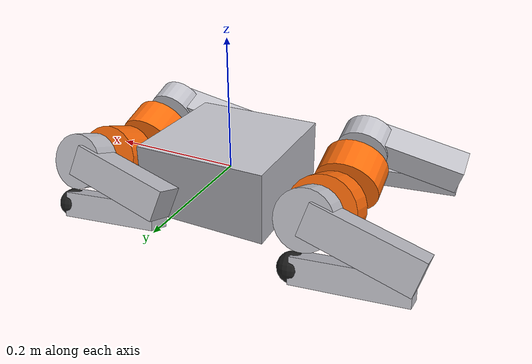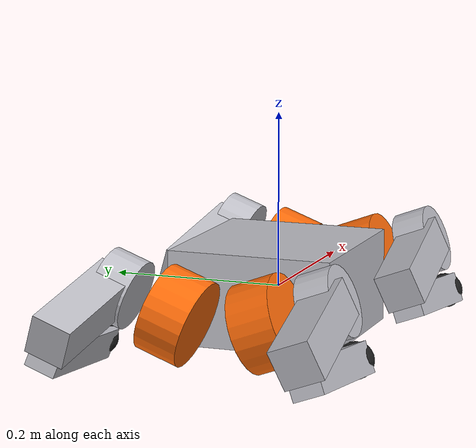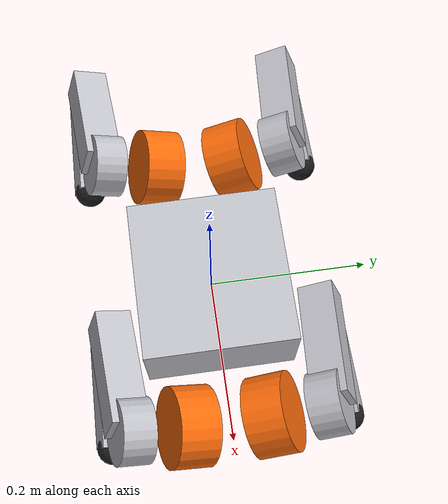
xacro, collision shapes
<?xml version="1.0"?>

<robot xmlns:xacro="http://www.ros.org/wiki/xacro" name="robot">

    <xacro:arg name="robot_type" default="a1"/>
    <xacro:arg name="sim" default="true"/>
    <xacro:arg name="real_hardware" default="false"/>
    <!-- Passed by sim.launch.py; consumed by common/gazebo.xacro to locate
         controllers.yaml for gz_ros2_control. -->
    <xacro:arg name="megadog_share" default=""/>
    <xacro:arg name="megadog_description_share" default=""/>

    <xacro:include filename="$(arg megadog_description_share)/urdf/common/materials.xacro"/>
    <xacro:include filename="$(arg megadog_description_share)/urdf/common/leg.xacro"/>
    <xacro:include filename="$(arg megadog_description_share)/urdf/common/gazebo.xacro"/>
    <xacro:include filename="$(arg megadog_description_share)/urdf/common/real_hardware.xacro"/>
    <xacro:include filename="$(arg megadog_description_share)/urdf/common/imu.xacro"/>

    <xacro:include filename="$(arg megadog_description_share)/urdf/$(arg robot_type)/const.xacro"/>

    <xacro:property name="mesh_path" value="file://$(arg megadog_description_share)/meshes/$(arg robot_type)"/>

    <link name="base">
        <visual>
            <origin rpy="0 0 0" xyz="0 0 0"/>
            <geometry>
                <mesh filename="${mesh_path}/base_link.STL" scale="1 1 1"/>
            </geometry>
            <material name="silver"/>
        </visual>
        <collision>
            <origin rpy="0 0 0" xyz="0 0 0"/>
            <geometry>
                <box size="${trunk_length} ${trunk_width} ${trunk_height}"/>
            </geometry>
        </collision>
        <inertial>
            <origin rpy="0 0 0" xyz="${trunk_com_x} ${trunk_com_y} ${trunk_com_z}"/>
            <mass value="${trunk_mass}"/>
            <inertia
                    ixx="${trunk_ixx}" ixy="${trunk_ixy}" ixz="${trunk_ixz}"
                    iyy="${trunk_iyy}" iyz="${trunk_iyz}"
                    izz="${trunk_izz}"/>
        </inertial>
    </link>

    <xacro:IMU connected_to="base" imu_name="base_imu" xyz="0. 0. 0." rpy="0. 0. 0."/>

    <xacro:leg prefix="LF" mesh_path="${mesh_path}" mirror="1" mirror_dae="True" front_hind="1" front_hind_dae="True">
        <origin rpy="0.36 0 0" xyz="${leg_offset_x} ${leg_offset_y} 0"/>
    </xacro:leg>

    <xacro:leg prefix="LH" mesh_path="${mesh_path}" mirror="1" mirror_dae="True" front_hind="-1" front_hind_dae="False">
        <origin rpy="0.36 0 0" xyz="${-leg_offset_x} ${leg_offset_y} 0"/>
    </xacro:leg>

    <xacro:leg prefix="RF" mesh_path="${mesh_path}" mirror="-1" mirror_dae="False" front_hind="1" front_hind_dae="True">
        <origin rpy="-0.36 0 0" xyz="${leg_offset_x} ${-leg_offset_y} 0"/>
    </xacro:leg>

    <xacro:leg prefix="RH" mesh_path="${mesh_path}" mirror="-1" mirror_dae="False" front_hind="-1" front_hind_dae="False">
        <origin rpy="-0.36 0 0" xyz="${-leg_offset_x} ${-leg_offset_y} 0"/>
    </xacro:leg>

</robot>

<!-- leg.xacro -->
<robot xmlns:xacro="http://www.ros.org/wiki/xacro">

    <xacro:include filename="$(arg megadog_description_share)/urdf/common/transmission.xacro"/>

    <xacro:macro name="leg" params="prefix mesh_path mirror mirror_dae front_hind front_hind_dae *origin">

        <joint name="${prefix}_HAA" type="revolute">
            <xacro:insert_block name="origin"/>
            <parent link="base"/>
            <child link="${prefix}_hip"/>
            <axis xyz="1 0 0"/>
            <dynamics damping="${damping}" friction="${friction}"/>
            <xacro:if value="${(mirror_dae == True)}">
                <limit effort="${hip_torque_max}" velocity="${hip_velocity_max}" lower="${hip_position_min}"
                       upper="${hip_position_max}"/>
            </xacro:if>
            <xacro:if value="${(mirror_dae == False)}">
                <limit effort="${hip_torque_max}" velocity="${hip_velocity_max}" lower="${-hip_position_max}"
                       upper="${-hip_position_min}"/>
            </xacro:if>
        </joint>

        <link name="${prefix}_hip">
            <visual>
                <origin rpy="0 0 0" xyz="0 0 0"/>
                <geometry>
                    <mesh filename="${mesh_path}/abad_link.STL" scale="${front_hind} ${mirror} 1"/>
                </geometry>
                <material name="orange"/>
            </visual>
            <collision>
                <origin rpy="${pi/2.0} 0 0" xyz="0 0 0"/>
                <geometry>
                    <cylinder length="${hip_length}" radius="${hip_radius}"/>
                </geometry>
            </collision>
            <inertial>
                <origin rpy="0 0 0" xyz="${hip_com_x*front_hind} ${hip_com_y*mirror} ${hip_com_z}"/>
                <mass value="${hip_mass}"/>
                <inertia
                        ixx="${hip_ixx}" ixy="${hip_ixy*mirror*front_hind}" ixz="${hip_ixz*front_hind}"
                        iyy="${hip_iyy}" iyz="${hip_iyz*mirror}"
                        izz="${hip_izz}"/>
            </inertial>
        </link>

        <joint name="${prefix}_HFE" type="revolute">
            <origin rpy="0 1.238 0" xyz="0 ${thigh_offset*mirror} 0"/>
            <parent link="${prefix}_hip"/>
            <child link="${prefix}_thigh"/>
            <axis xyz="0 -1 0"/>
            <dynamics damping="${damping}" friction="${friction}"/>
            <limit effort="${thigh_torque_max}" velocity="${thigh_velocity_max}" lower="${thigh_position_min}"
                   upper="${thigh_position_max}"/>
        </joint>

        <link name="${prefix}_thigh">
            <!-- devq/babyDog's hip_link.STL - scale Y-mirrors by side only
                 (not front/hind), matching babyDog's own hip_link scale
                 attributes exactly. -->
            <visual>
                <origin rpy="0 0 0" xyz="0 0 0"/>
                <geometry>
                    <mesh filename="${mesh_path}/hip_link.STL" scale="1 ${mirror} 1"/>
                </geometry>
                <material name="silver"/>
            </visual>
            <collision>
                <origin rpy="0 ${pi/2.0+0.1} 0" xyz="${thigh_x_offset} 0 ${-thigh_length/2.0}"/>
                <geometry>
                    <box size="${thigh_length} ${thigh_width} ${thigh_height}"/>
                </geometry>
            </collision>
            <collision>
                <origin rpy="${pi/2.0} 0 0" xyz="0 ${mirror*thigh_shoulder_y_offset} 0"/>
                <geometry>
                    <cylinder length="${thigh_shoulder_length}" radius="${thigh_shoulder_radius}"/>
                </geometry>
            </collision>
            <inertial>
                <origin rpy="0 0 0" xyz="${thigh_com_x} ${thigh_com_y*mirror} ${thigh_com_z}"/>
                <mass value="${thigh_mass}"/>
                <inertia
                        ixx="${thigh_ixx}" ixy="${thigh_ixy*mirror}" ixz="${thigh_ixz}"
                        iyy="${thigh_iyy}" iyz="${thigh_iyz*mirror}"
                        izz="${thigh_izz}"/>
            </inertial>
        </link>

        <joint name="${prefix}_KFE" type="revolute">
            <origin rpy="0 -2.705 0" xyz="0 0 ${-thigh_length}"/>
            <parent link="${prefix}_thigh"/>
            <child link="${prefix}_calf"/>
            <axis xyz="0 -1 0"/>
            <dynamics damping="${damping}" friction="${friction}"/>
            <limit effort="${calf_torque_max}" velocity="${calf_velocity_max}" lower="${calf_position_min}" upper="${calf_position_max}"/>
        </joint>

        <link name="${prefix}_calf">
            <!-- devq/babyDog's knee_link.STL - scale Y-mirrors by side only,
                 same pattern as hip_link.STL above. -->
            <visual>
                <origin rpy="0 0 0" xyz="0 0 0"/>
                <geometry>
                    <mesh filename="${mesh_path}/knee_link.STL" scale="1 ${mirror} 1"/>
                </geometry>
                <material name="silver"/>
            </visual>
            <collision>
                <origin rpy="0 ${pi/2.0} 0" xyz="${calf_x_offset} 0 ${-calf_length/2.0}"/>
                <geometry>
                    <box size="${calf_length} ${calf_width} ${calf_height}"/>
                </geometry>
            </collision>
            <inertial>
                <origin rpy="0 0 0" xyz="${calf_com_x} ${calf_com_y} ${calf_com_z}"/>
                <mass value="${calf_mass}"/>
                <inertia
                        ixx="${calf_ixx}" ixy="${calf_ixy}" ixz="${calf_ixz}"
                        iyy="${calf_iyy}" iyz="${calf_iyz}"
                        izz="${calf_izz}"/>
            </inertial>
        </link>

        <joint name="${prefix}_foot_fixed" type="fixed" dont_collapse="true">
            <origin rpy="0 0 0" xyz="0 0 ${-(calf_length)}"/>
            <parent link="${prefix}_calf"/>
            <child link="${prefix}_FOOT"/>
        </joint>

        <link name="${prefix}_FOOT">
            <visual>
                <origin rpy="0 0 0" xyz="0 0 0"/>
                <geometry>
                    <mesh filename="${mesh_path}/foot_link.STL" scale="1 1 1"/>
                </geometry>
                <material name="black"/>
            </visual>
            <collision>
                <origin rpy="0 0 0" xyz="0 0 0"/>
                <geometry>
                    <sphere radius="${foot_radius}"/>
                </geometry>
            </collision>
            <inertial>
                <mass value="${foot_mass}"/>
                <inertia
                        ixx="${(2*foot_mass)/5.0*(foot_radius*foot_radius)}" ixy="0.0" ixz="0.0"
                        iyy="${(2*foot_mass)/5.0*(foot_radius*foot_radius)}" iyz="0.0"
                        izz="${(2*foot_mass)/5.0*(foot_radius*foot_radius)}"/>
            </inertial>
        </link>

        <gazebo reference="${prefix}_foot_fixed">
            <disableFixedJointLumping>true</disableFixedJointLumping>
        </gazebo>

        <gazebo reference="${prefix}_hip">
            <mu1>0.2</mu1>
            <mu2>0.2</mu2>
            <material>Gazebo/DarkGrey</material>
        </gazebo>
        <gazebo reference="${prefix}_thigh">
            <mu1>0.2</mu1>
            <mu2>0.2</mu2>
            <self_collide>0</self_collide>
            <material>Gazebo/DarkGrey</material>
            <kp value="1000000.0"/>
            <kd value="100.0"/>
        </gazebo>
        <gazebo reference="${prefix}_calf">
            <mu1>0.6</mu1>
            <mu2>0.6</mu2>
            <self_collide>1</self_collide>
        </gazebo>
        <gazebo reference="${prefix}_FOOT">
            <mu1>0.6</mu1>
            <mu2>0.6</mu2>
            <self_collide>1</self_collide>
            <material>Gazebo/DarkGrey</material>
            <kp value="1000000.0"/>
            <kd value="100.0"/>
        </gazebo>

        <xacro:leg_transmission name="${prefix}"/>
    </xacro:macro>
</robot>

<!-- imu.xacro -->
<robot xmlns:xacro="http://www.ros.org/wiki/xacro" name="imu">
    <xacro:macro name="IMU" params="connected_to imu_name xyz:='0 0 0' rpy:='0 0 0' ">
        <!-- Imu is fixed to the base link -->
        <joint name="${imu_name}_joint" type="fixed">
            <origin xyz="${xyz}" rpy="${rpy}"/>
            <parent link="${connected_to}"/>
            <child link="${imu_name}"/>
        </joint>
        <!-- Imu link -->
        <link name="${imu_name}">
            <inertial>
                <mass value="0.01"/>
                <origin rpy="0 0 0" xyz="0 0 0"/>
                <inertia ixx="0.000001" ixy="0" ixz="0" iyy="0.000001" iyz="0" izz="0.000001"/>
            </inertial>
            <visual>
                <origin rpy="0 0 0" xyz="0 0 0"/>
                <geometry>
                    <box size="0.015 0.015 0.004"/>
                </geometry>
            </visual>
            <material name="orange">
                <color rgba="255 108 10 255"/>
            </material>
        </link>
        <gazebo reference="${imu_name}">
            <material>Gazebo/Orange</material>
            <sensor name="imu_sensor" type="imu">
                <always_on>true</always_on>
                <update_rate>100</update_rate>
                <visualize>false</visualize>
                <topic>/imu/sim_raw</topic>
                <pose>0 0 0 0 0 0</pose>
            </sensor>
        </gazebo>
        <gazebo reference="${imu_name}_joint">
            <disableFixedJointLumping>true</disableFixedJointLumping>
        </gazebo>
    </xacro:macro>
</robot>

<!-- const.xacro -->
<robot xmlns:xacro="http://www.ros.org/wiki/xacro" name="a1_description">

    <!-- Constants for robot dimensions -->
    <xacro:property name="stick_mass" value="0.00001"/>

    <!-- simplified collision value -->
    <xacro:property name="trunk_width" value="0.19"/>
    <xacro:property name="trunk_length" value="0.20"/>
    <xacro:property name="trunk_height" value="0.1076"/>
    <xacro:property name="hip_radius" value="0.05"/>
    <xacro:property name="hip_length" value="0.05"/>
    <xacro:property name="thigh_shoulder_radius" value="0.04"/>
    <xacro:property name="thigh_shoulder_length" value="0.04"/>
    <xacro:property name="thigh_shoulder_y_offset" value="-0.006"/>

    <xacro:property name="thigh_width" value="0.045"/>
    <xacro:property name="thigh_height" value="0.045"/>
    <xacro:property name="thigh_x_offset" value="-0.01125"/>
    <xacro:property name="calf_width" value="0.035"/>
    <xacro:property name="calf_height" value="0.035"/>
    <xacro:property name="calf_x_offset" value="0.0"/>
    <xacro:property name="foot_radius" value="0.0205"/>

    <!-- kinematic value -->
    <xacro:property name="thigh_offset" value="0.077"/>
    <xacro:property name="thigh_length" value="0.15"/>
    <xacro:property name="calf_length" value="0.15"/>

    <!-- leg offset from trunk center value -->
    <xacro:property name="leg_offset_x" value="0.176"/>
    <xacro:property name="leg_offset_y" value="0.0525"/>
    <xacro:property name="trunk_offset_z" value="0.01675"/>
    <xacro:property name="hip_offset" value="0.065"/>

    <!-- joint limits -->
    <xacro:property name="damping" value="0"/>
    <xacro:property name="friction" value="0"/>
    <xacro:property name="hip_position_max" value="1.134"/>
    <xacro:property name="hip_position_min" value="-1.134"/>
    <xacro:property name="hip_velocity_max" value="16.29"/>
    <xacro:property name="hip_torque_max" value="80.0"/>
    <xacro:property name="thigh_position_max" value="4.03"/>
    <xacro:property name="thigh_position_min" value="-1.903"/>
    <xacro:property name="thigh_velocity_max" value="16.29"/>
    <xacro:property name="thigh_torque_max" value="80.0"/>
    <xacro:property name="calf_position_max" value="0.0"/>
    <xacro:property name="calf_position_min" value="-2.269"/>
    <xacro:property name="calf_velocity_max" value="16.29"/>
    <xacro:property name="calf_torque_max" value="80.0"/>

    <!-- dynamics inertial value -->
    <xacro:property name="trunk_mass" value="2.571164339"/>
    <xacro:property name="trunk_com_x" value="-0.00091406"/>
    <xacro:property name="trunk_com_y" value="-0.001375573"/>
    <xacro:property name="trunk_com_z" value="-0.001298396475"/>
    <xacro:property name="trunk_ixx" value="0.0063721225"/>
    <xacro:property name="trunk_ixy" value="-0.0000632938"/>
    <xacro:property name="trunk_ixz" value="-0.0000089136"/>
    <xacro:property name="trunk_iyy" value="0.0191754101"/>
    <xacro:property name="trunk_iyz" value="0.0000201465"/>
    <xacro:property name="trunk_izz" value="0.0234706047"/>

    <!-- hip (left front) - scale factor 0.42309 (mass 0.75216 * length^2 0.5625) -->
    <xacro:property name="hip_mass" value="0.447529613"/>
    <xacro:property name="hip_com_x" value="-0.002906"/>
    <xacro:property name="hip_com_y" value="0.0012165"/>
    <xacro:property name="hip_com_z" value="0.0000315"/>
    <xacro:property name="hip_ixx" value="0.0001704"/>
    <xacro:property name="hip_ixy" value="-0.0000036847"/>
    <xacro:property name="hip_ixz" value="-0.0000001257"/>
    <xacro:property name="hip_iyy" value="0.0002924"/>
    <xacro:property name="hip_iyz" value="-0.0000002306"/>
    <xacro:property name="hip_izz" value="0.0002064"/>

    <!-- thigh - scale factor 0.33361 (mass 0.59309 * length^2 0.5625) -->
    <xacro:property name="thigh_mass" value="0.526649872"/>
    <xacro:property name="thigh_com_x" value="-0.0026805"/>
    <xacro:property name="thigh_com_y" value="-0.0146468"/>
    <xacro:property name="thigh_com_z" value="-0.0227423"/>
    <xacro:property name="thigh_ixx" value="0.0017520"/>
    <xacro:property name="thigh_ixy" value="-0.0000007233"/>
    <xacro:property name="thigh_ixz" value="0.0001157"/>
    <xacro:property name="thigh_iyy" value="0.0016682"/>
    <xacro:property name="thigh_iyz" value="-0.0000094"/>
    <xacro:property name="thigh_izz" value="0.0003704"/>

    <!-- calf - scale factor 0.29244 (mass 0.51989 * length^2 0.5625) -->
    <xacro:property name="calf_mass" value="0.078504403"/>
    <xacro:property name="calf_com_x" value="0.0053288"/>
    <xacro:property name="calf_com_y" value="-0.0001793"/>
    <xacro:property name="calf_com_z" value="-0.0727"/>
    <xacro:property name="calf_ixx" value="0.0006858"/>
    <xacro:property name="calf_ixy" value="0.0"/>
    <xacro:property name="calf_ixz" value="-0.0000413"/>
    <xacro:property name="calf_iyy" value="0.0006903"/>
    <xacro:property name="calf_iyz" value="0.0"/>
    <xacro:property name="calf_izz" value="0.0000091"/>

    <!-- foot -->
    <xacro:property name="foot_mass" value="0.06"/>

</robot>
